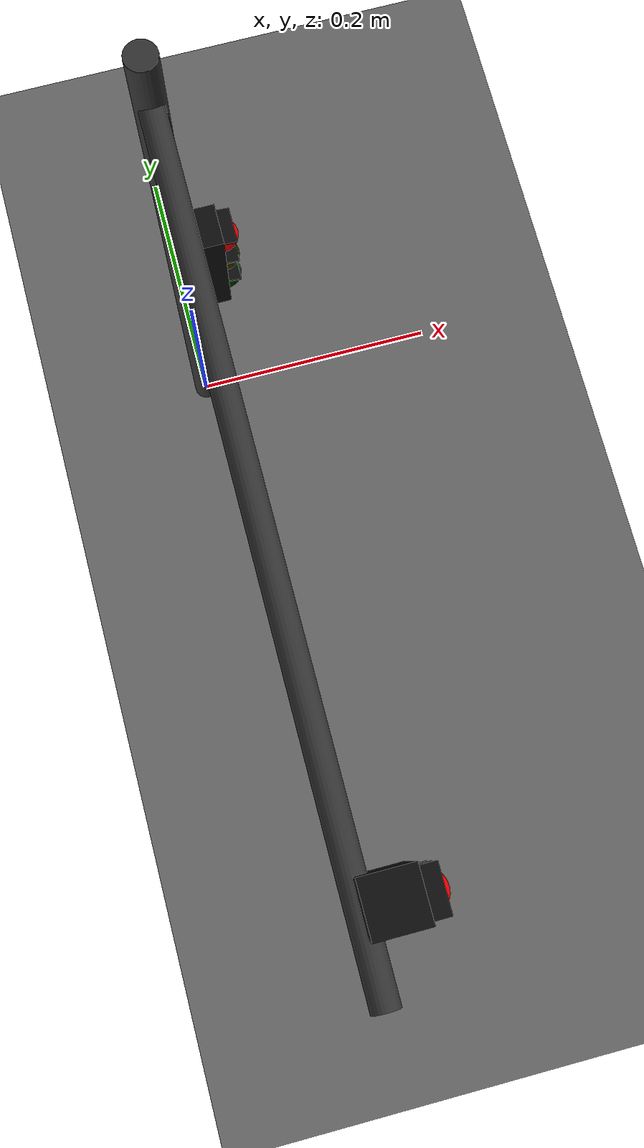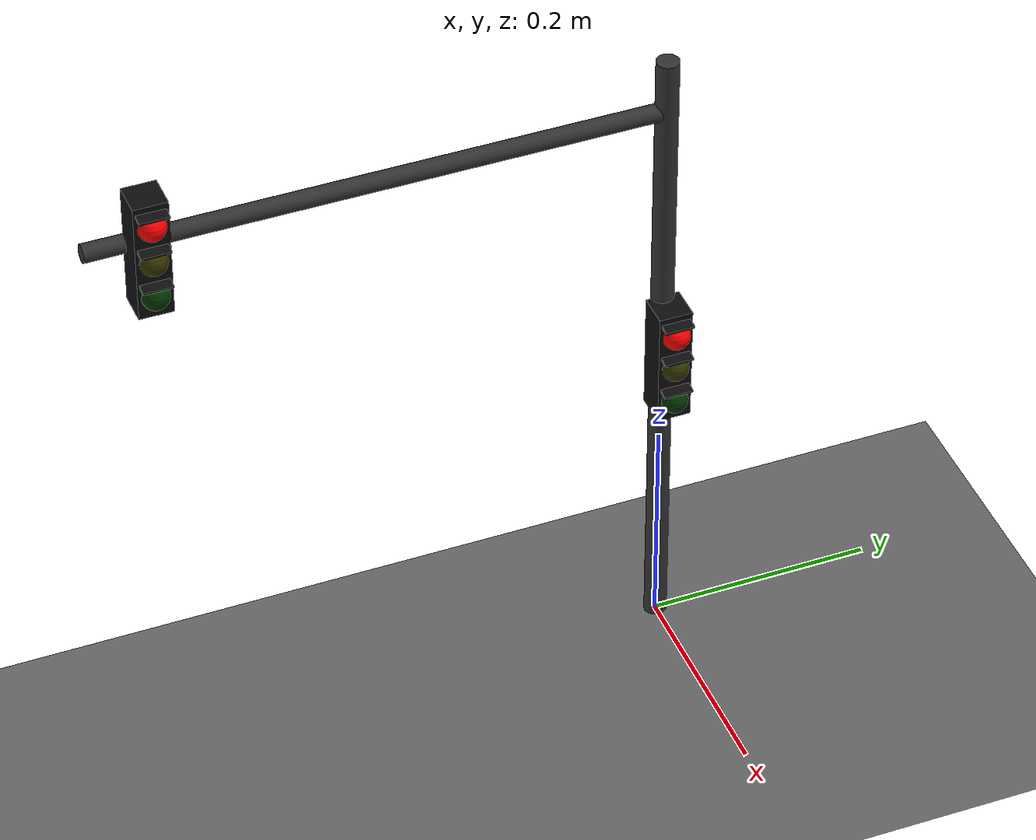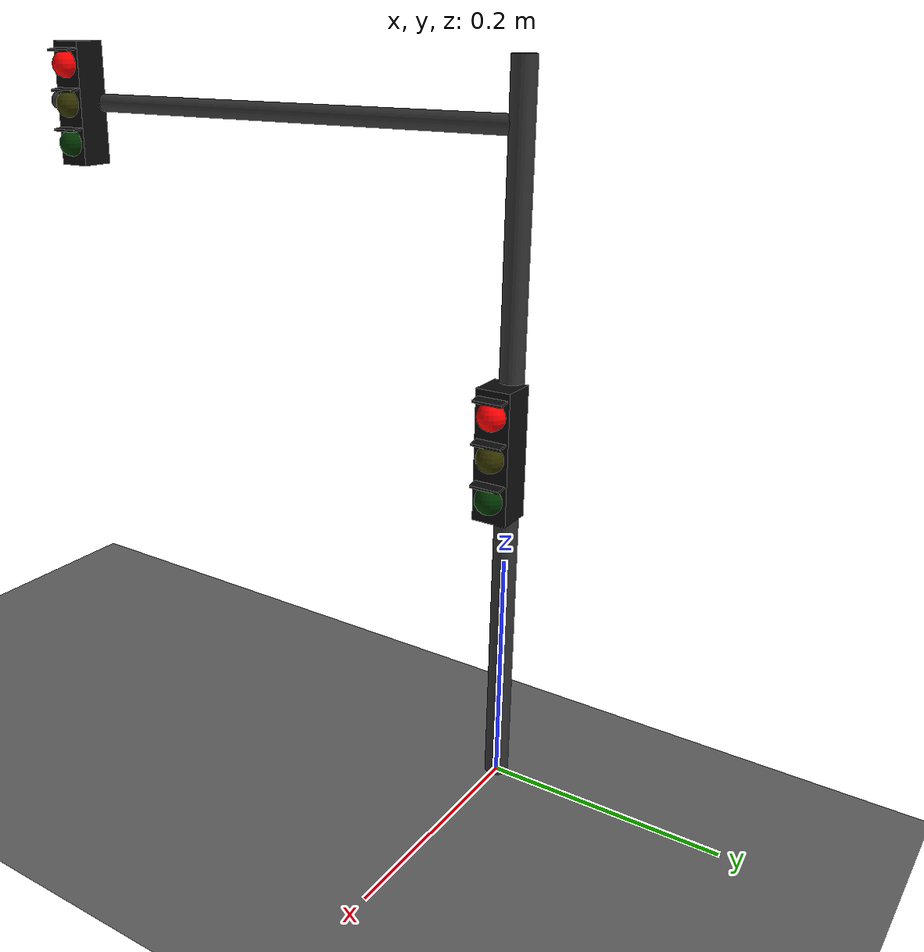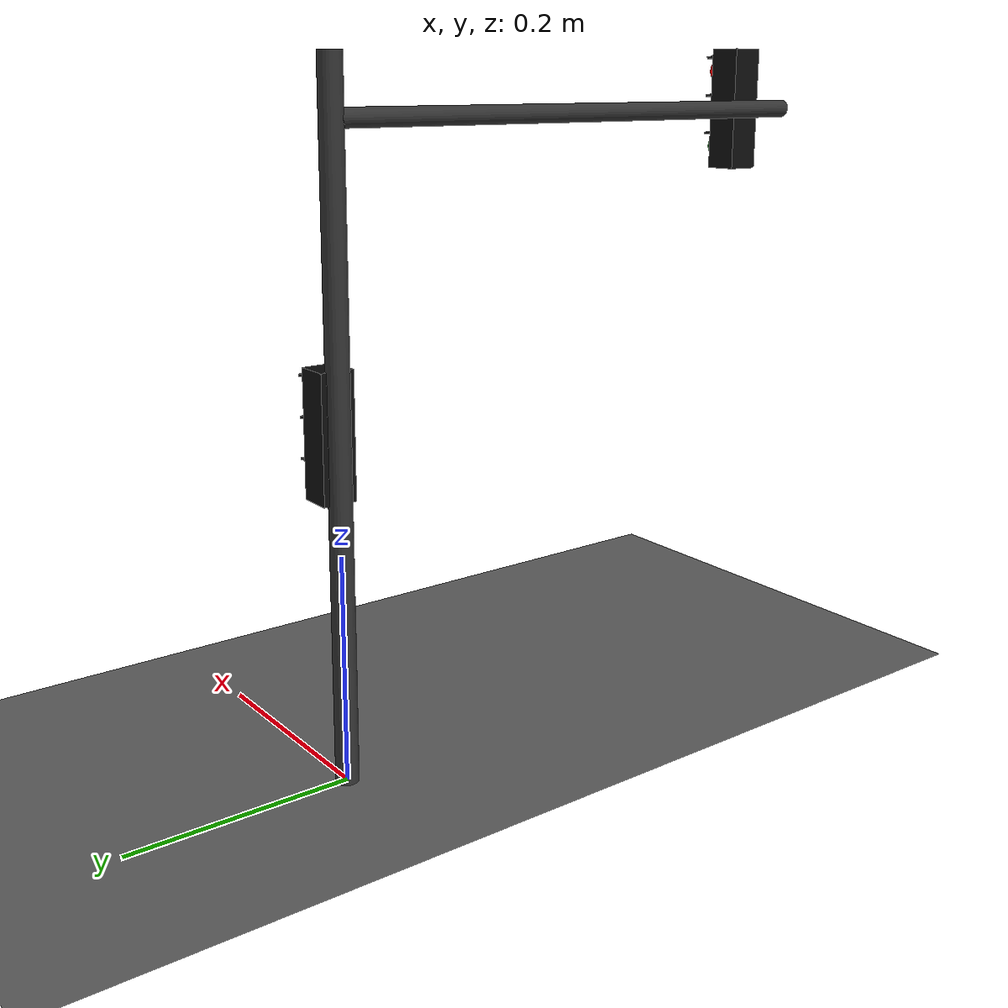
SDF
<sdf version="1.9">
  <world name="default">

    <!-- Physics -->
    <physics type="ode">
      <max_step_size>0.004</max_step_size>
      <real_time_factor>1.0</real_time_factor>
    </physics>

    <!-- Sun light (sem model://sun) -->
    <light type="directional" name="sun">
      <pose>0 0 10 0 0 0</pose>
      <diffuse>1 1 1 1</diffuse>
      <specular>0.2 0.2 0.2 1</specular>
      <direction>-0.5 0.1 -1</direction>
    </light>

    <!-- Ground plane (sem model://ground_plane) -->
    <model name="ground">
      <static>true</static>
      <link name="ground_link">
        <collision name="collision">
          <geometry>
            <plane>
              <normal>0 0 1</normal>
              <size>100 100</size>
            </plane>
          </geometry>
        </collision>
        <visual name="visual">
          <geometry>
            <plane>
              <normal>0 0 1</normal>
              <size>100 100</size>
            </plane>
          </geometry>
          <material>
            <ambient>0.3 0.3 0.3 1</ambient>
            <diffuse>0.4 0.4 0.4 1</diffuse>
          </material>
        </visual>
      </link>
    </model>

    <!-- Seu semáforo -->
    <include>
      <uri>model://traffic_light</uri>
      <pose>0 0 0 0 0 0</pose>
    </include>

  </world>
</sdf>

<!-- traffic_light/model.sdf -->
<sdf version="1.9">
  <model name="traffic_light">
    <static>true</static>

    <link name="base_link">

      <visual name="pole_visual">
        <pose>0 0 0.3 0 0 0</pose> <geometry><cylinder><radius>0.01</radius><length>0.6</length></cylinder></geometry> <material><ambient>0.2 0.2 0.2 1</ambient><diffuse>0.2 0.2 0.2 1</diffuse></material>
      </visual>

      <visual name="arm_visual">
        <pose>0 -0.25 0.55 1.5707 0 0</pose> <geometry><cylinder><radius>0.008</radius><length>0.5</length></cylinder></geometry> <material><ambient>0.2 0.2 0.2 1</ambient><diffuse>0.2 0.2 0.2 1</diffuse></material>
      </visual>

      <visual name="head1_body">
        <pose>0.015 0 0.3 0 0 0</pose> <geometry><box><size>0.03 0.03 0.11</size></box></geometry> <material><ambient>0.05 0.05 0.05 1</ambient><diffuse>0.05 0.05 0.05 1</diffuse></material>
      </visual>

      <visual name="head1_visor_red"><pose>0.032 0 0.348 0 0.15 0</pose><geometry><box><size>0.015 0.026 0.002</size></box></geometry><material><ambient>0.05 0.05 0.05 1</ambient><diffuse>0.05 0.05 0.05 1</diffuse></material></visual>
      <visual name="head1_visor_yellow"><pose>0.032 0 0.313 0 0.15 0</pose><geometry><box><size>0.015 0.026 0.002</size></box></geometry><material><ambient>0.05 0.05 0.05 1</ambient><diffuse>0.05 0.05 0.05 1</diffuse></material></visual>
      <visual name="head1_visor_green"><pose>0.032 0 0.278 0 0.15 0</pose><geometry><box><size>0.015 0.026 0.002</size></box></geometry><material><ambient>0.05 0.05 0.05 1</ambient><diffuse>0.05 0.05 0.05 1</diffuse></material></visual>

      <visual name="head1_red_visual_off"><pose>0.03 0 0.335 0 0 0</pose><geometry><sphere><radius>0.012</radius></sphere></geometry><material><ambient>0.2 0 0 1</ambient><diffuse>0.2 0 0 1</diffuse></material></visual>
      <visual name="head1_red_visual_on"><pose>0.0305 0 0.335 0 0 0</pose><geometry><sphere><radius>0.0122</radius></sphere></geometry><material><ambient>1 0.2 0.2 1</ambient><diffuse>1 0 0 1</diffuse><emissive>1 0 0 1</emissive></material></visual>

      <visual name="head1_yellow_visual_off"><pose>0.03 0 0.3 0 0 0</pose><geometry><sphere><radius>0.012</radius></sphere></geometry><material><ambient>0.2 0.2 0 1</ambient><diffuse>0.2 0.2 0 1</diffuse></material></visual>
      <visual name="head1_yellow_visual_on"><pose>0.015 0 0.3 0 0 0</pose><geometry><sphere><radius>0.0122</radius></sphere></geometry><material><ambient>1 1 0.2 1</ambient><diffuse>1 1 0 1</diffuse><emissive>1 1 0 1</emissive></material></visual>

      <visual name="head1_green_visual_off"><pose>0.03 0 0.265 0 0 0</pose><geometry><sphere><radius>0.012</radius></sphere></geometry><material><ambient>0 0.2 0 1</ambient><diffuse>0 0.2 0 1</diffuse></material></visual>
      <visual name="head1_green_visual_on"><pose>0.015 0 0.265 0 0 0</pose><geometry><sphere><radius>0.0122</radius></sphere></geometry><material><ambient>0.2 1 0.2 1</ambient><diffuse>0 1 0 1</diffuse><emissive>0 1 0 1</emissive></material></visual>

      <visual name="head2_body">
        <pose>0.015 -0.45 0.55 0 0 0</pose> <geometry><box><size>0.03 0.03 0.11</size></box></geometry>
        <material><ambient>0.05 0.05 0.05 1</ambient><diffuse>0.05 0.05 0.05 1</diffuse></material>
      </visual>

      <visual name="head2_visor_red"><pose>0.032 -0.45 0.598 0 0.15 0</pose><geometry><box><size>0.015 0.026 0.002</size></box></geometry><material><ambient>0.05 0.05 0.05 1</ambient><diffuse>0.05 0.05 0.05 1</diffuse></material></visual>
      <visual name="head2_visor_yellow"><pose>0.032 -0.45 0.563 0 0.15 0</pose><geometry><box><size>0.015 0.026 0.002</size></box></geometry><material><ambient>0.05 0.05 0.05 1</ambient><diffuse>0.05 0.05 0.05 1</diffuse></material></visual>
      <visual name="head2_visor_green"><pose>0.032 -0.45 0.528 0 0.15 0</pose><geometry><box><size>0.015 0.026 0.002</size></box></geometry><material><ambient>0.05 0.05 0.05 1</ambient><diffuse>0.05 0.05 0.05 1</diffuse></material></visual>

      <visual name="head2_red_visual_off"><pose>0.03 -0.45 0.585 0 0 0</pose><geometry><sphere><radius>0.012</radius></sphere></geometry><material><ambient>0.2 0 0 1</ambient><diffuse>0.2 0 0 1</diffuse></material></visual>
      <visual name="head2_red_visual_on"><pose>0.0305 -0.45 0.585 0 0 0</pose><geometry><sphere><radius>0.0122</radius></sphere></geometry><material><ambient>1 0.2 0.2 1</ambient><diffuse>1 0 0 1</diffuse><emissive>1 0 0 1</emissive></material></visual>

      <visual name="head2_yellow_visual_off"><pose>0.03 -0.45 0.55 0 0 0</pose><geometry><sphere><radius>0.012</radius></sphere></geometry><material><ambient>0.2 0.2 0 1</ambient><diffuse>0.2 0.2 0 1</diffuse></material></visual>
      <visual name="head2_yellow_visual_on"><pose>0.015 -0.45 0.55 0 0 0</pose><geometry><sphere><radius>0.0122</radius></sphere></geometry><material><ambient>1 1 0.2 1</ambient><diffuse>1 1 0 1</diffuse><emissive>1 1 0 1</emissive></material></visual>

      <visual name="head2_green_visual_off"><pose>0.03 -0.45 0.515 0 0 0</pose><geometry><sphere><radius>0.012</radius></sphere></geometry><material><ambient>0 0.2 0 1</ambient><diffuse>0 0.2 0 1</diffuse></material></visual>
      <visual name="head2_green_visual_on"><pose>0.015 -0.45 0.515 0 0 0</pose><geometry><sphere><radius>0.0122</radius></sphere></geometry><material><ambient>0.2 1 0.2 1</ambient><diffuse>0 1 0 1</diffuse><emissive>0 1 0 1</emissive></material></visual>

    </link>

    <plugin filename="libtraffic_light_plugin.so" name="traffic_light_sim::TrafficLightPlugin"/>
  </model>
</sdf>
